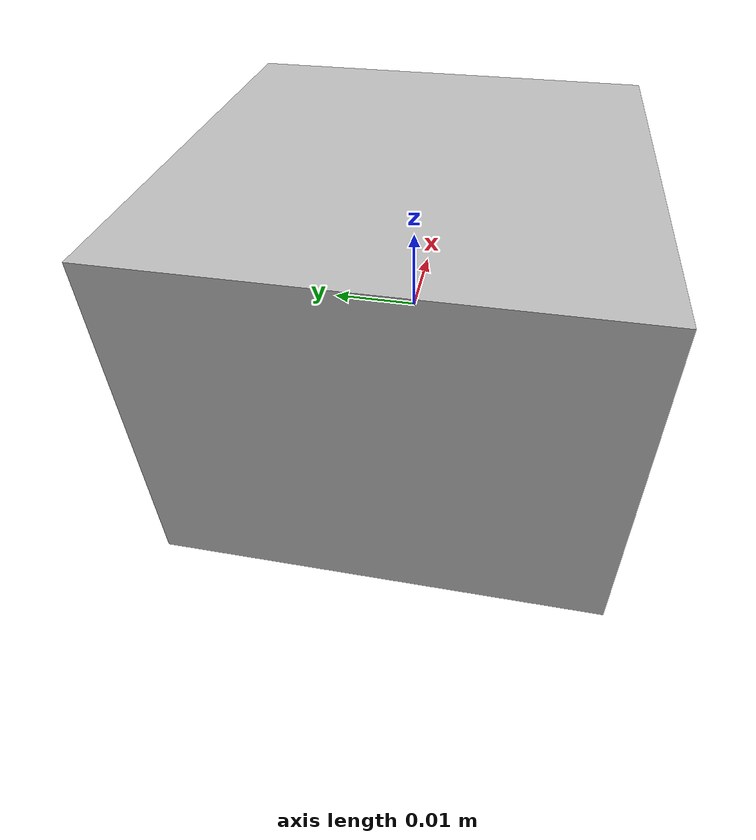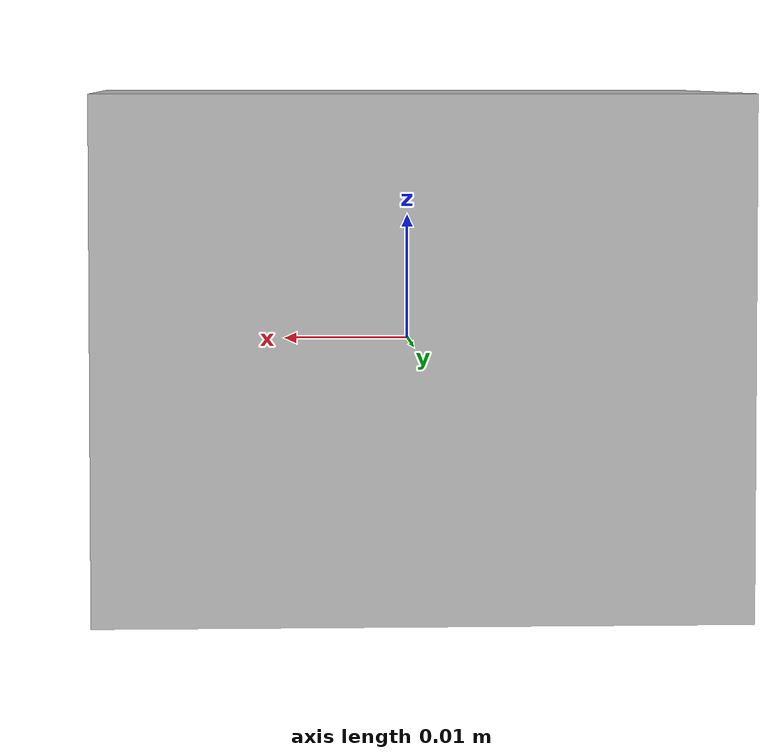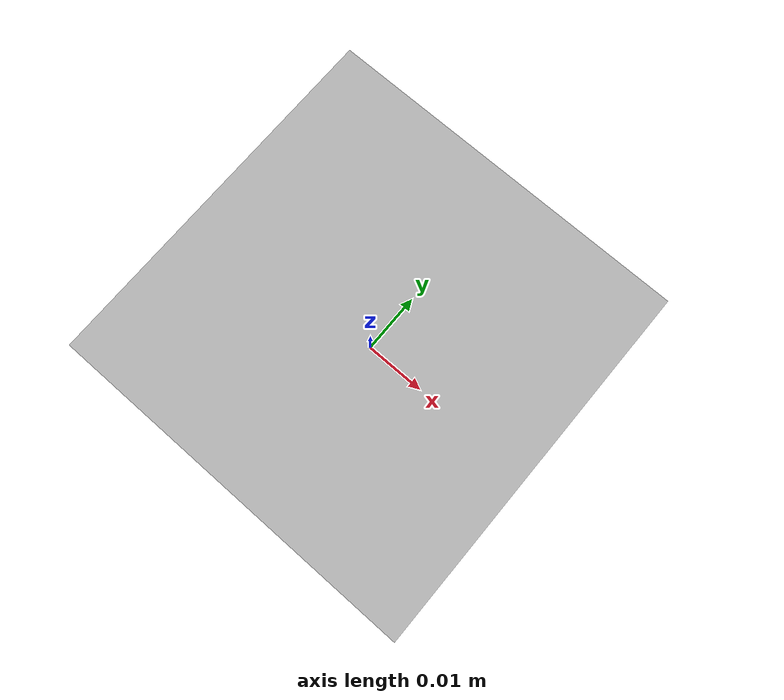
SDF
<!--版本信息-->
<?xml version="1.0" ?>
<sdf version="1.6">
<!--模型名字-->
  <model name="rplidar_s1">
  <!--定义模型链杆，包含模型的一个主体的物理属性，如惯性、碰撞、可视化等属性，link只能申明在model中，一个model可以申明多个link,尽量减少模型中link数量可以提高性能和稳定-->
    <link name="link">

      <!-- 物理参数设置 -->
      <inertial>
        <pose>0 0 0 0 0 0</pose> <!--位置-->
        <mass>0.1</mass>  <!--质量-->
        <!--惯性矩代表了刚体中质量的空间分布,取决于身体的质量、大小和形状，表示为对称正定3x3矩阵的分量，其中有3个对角元素和3个唯一的非对角元素-->
        <inertia>
          <ixx>4.15e-6</ixx>
          <ixy>0</ixy>
          <ixz>0</ixz>
          <iyy>2.407e-6</iyy>
          <iyz>0</iyz>
          <izz>2.407e-6</izz>
        </inertia>
      </inertial>

      <!-- 显示参数设置 -->
      <visual name="visual"><!--link的可视化信息-->
      <!--geometry 输入模型的形状。提供box、cylinder、sphere等形态,也可以自己导入-->
        <geometry>
          <box>
            <size>0.05 0.05 0.04</size>
          </box>
        </geometry>
      </visual>

      <!-- 传感器参数设置 -->
      <!--sensor传感器标签，描述传感器的种类和特性-->
      <!--name标签是传感器的名字，在这个模型中是唯一的-->
      <!--type标签是传感器的种类,SDF格式支持air_pressure、camera、ray、gpu_ray等等，其中ray表示雷达-->
      <sensor name="2Dlaser" type="ray">
      <!--雷达的参数设置-->
        <ray>
        <!--扫描参数-->
          <scan>
            <horizontal> <!--水平面标签，表示雷达扫描范围是水平面-->
              <samples>360</samples><!--定义仿真雷达一个完整的扫描周期所产生的射线数-->
              <resolution>1</resolution><!--分辨率，分辨率乘以samples,即表示雷达一个完整的扫描周最后返回的数据点-->
              <min_angle>-3.14</min_angle> <!--定义扫描范围-->
              <max_angle>3.14</max_angle>
            </horizontal>
          </scan>
          <!--每一条模拟射线，具体的扫描范围-->
          <range>
            <min>0.1</min> <!--每条射线的最小扫描距离0.1米-->
            <max>20</max><!--每条射线的最大扫描距离20米-->
            <resolution>0.01</resolution><!--每条射线的线分辨率为0.01米-->
          </range>
          <!--噪音标签，定义噪音的模型-->
          <noise>
            <type>gaussian</type> <!--高斯分布的噪音模型-->
            <mean>0.0</mean>  <!--高斯分布的均值为0.0-->
            <stddev>0.001</stddev><!--高斯分布的标准差值为0.001-->
          </noise>
        </ray>
        <!--插件标签，导入插件，filename定义导入的库文件，可以写绝对路径，如果没写绝对路径，则会从配置文件中寻找-->
        <!--name标签，为导入的库文件定义名称，在当前sdf文件中不可重名-->
        <plugin name="laser" filename="libRayPlugin.so" /> <!--插入libRayPlugin.so插件，命名为laser-->
        <plugin name="2Dlidar" filename="libgazebo_ros_laser.so"><!--插入libgazebo_ros_laser.so插件，命名为2Dlidar,此插件提供gazebo中雷达与ros的数据交流-->
          <topicName>/prometheus/sensors/2Dlidar_scan</topicName><!--定义gazebo中扫描到的雷达数据在ros中的话题名称-->
          <frameName>lidar_link</frameName> <!--定义数据所在参考系名称为lidar_link-->
        </plugin>

        <always_on>1</always_on> <!--bool变量，默认值为0，表示flase;1为true,sensor将会根据update_rate的值来更新-->
        <update_rate>10</update_rate> <!--更新频率-->
        <visualize>true</visualize> <!--是否可视，true表示传感器可以在图形界面观察-->
      </sensor>

    </link>

  </model>
</sdf>
